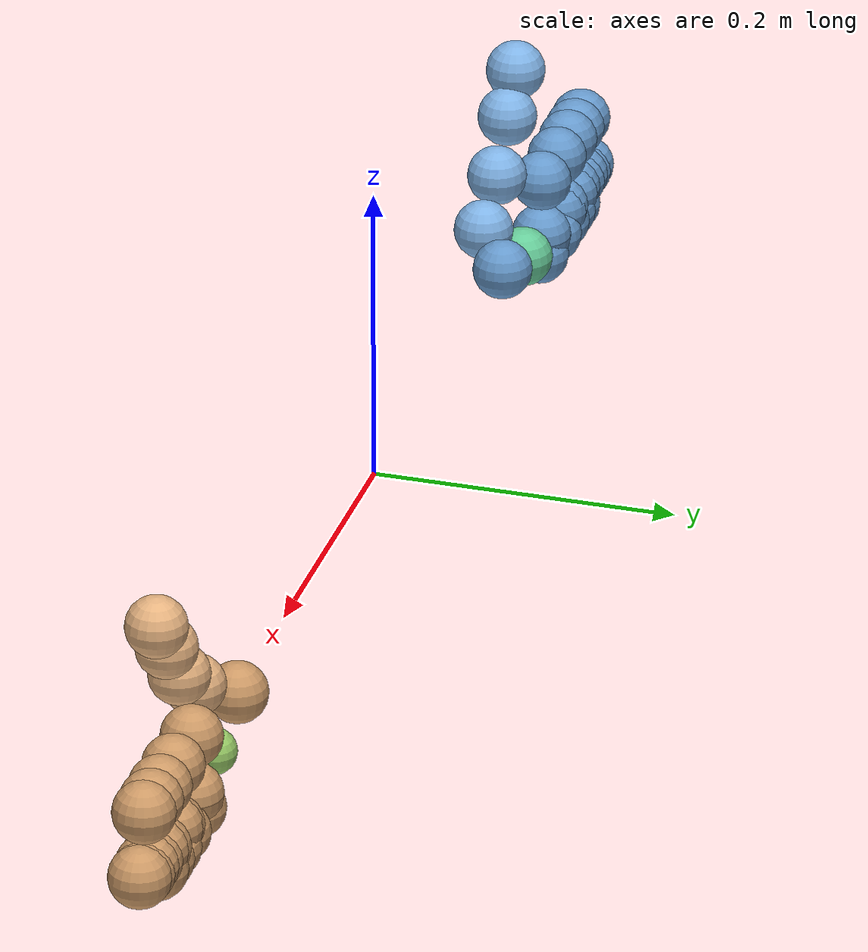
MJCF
<mujoco model="openxr_both_hands">
  <compiler angle="radian" meshdir="assets/"/>

  <option timestep="0.001" iterations="50" solver="Newton" tolerance="1e-10"/>

  <visual>
    <rgba haze="0.15 0.25 0.35 1"/>
    <global offwidth="800" offheight="800"/>
  </visual>

  <asset>
    <material name="left_hand_finger" rgba="0.4 0.6 0.8 1"/>
    <material name="left_hand_wrist" rgba="0.4 0.8 0.6 1"/>
    <material name="left_hand_thumb" rgba="0.5 0.7 0.9 1"/>
    <material name="right_hand_finger" rgba="0.8 0.6 0.4 1"/>
    <material name="right_hand_wrist" rgba="0.6 0.8 0.4 1"/>
    <material name="right_hand_thumb" rgba="0.9 0.7 0.5 1"/>
  </asset>

  <worldbody>
    <!-- LEFT HAND - All bodies flattened -->
    <body name="Left_XRHand_Palm" pos="-0.3 0 0">
      <geom name="Left_XRHand_Palm_geom" type="sphere" size="0.02" material="left_hand_finger"/>
    </body>

    <body name="Left_XRHand_Wrist" pos="-0.35 0 -0.015">
      <geom name="Left_XRHand_Wrist_geom" type="sphere" size="0.02" material="left_hand_wrist"/>
    </body>

    <!-- Left Thumb Chain - Flattened -->
    <body name="Left_XRHand_ThumbMetacarpal" pos="-0.324 -0.02 0.015">
      <geom name="Left_XRHand_ThumbMetacarpal_geom" type="sphere" size="0.02" material="left_hand_thumb"/>
    </body>

    <body name="Left_XRHand_ThumbProximal" pos="-0.356 -0.02 0.04">
      <geom name="Left_XRHand_ThumbProximal_geom" type="sphere" size="0.02" material="left_hand_thumb"/>
    </body>

    <body name="Left_XRHand_ThumbDistal" pos="-0.381 -0.02 0.072">
      <geom name="Left_XRHand_ThumbDistal_geom" type="sphere" size="0.02" material="left_hand_thumb"/>
    </body>

    <body name="Left_XRHand_ThumbTip" pos="-0.401 -0.02 0.097">
      <geom name="Left_XRHand_ThumbTip_geom" type="sphere" size="0.02" material="left_hand_thumb"/>
    </body>

    <!-- Left Index Finger Chain - Flattened -->
    <body name="Left_XRHand_IndexMetacarpal" pos="-0.395 0 0.02">
      <geom name="Left_XRHand_IndexMetacarpal_geom" type="sphere" size="0.02" material="left_hand_finger"/>
    </body>

    <body name="Left_XRHand_IndexProximal" pos="-0.433 0 0.02">
      <geom name="Left_XRHand_IndexProximal_geom" type="sphere" size="0.02" material="left_hand_finger"/>
    </body>

    <body name="Left_XRHand_IndexIntermediate" pos="-0.46 0 0.02">
      <geom name="Left_XRHand_IndexIntermediate_geom" type="sphere" size="0.02" material="left_hand_finger"/>
    </body>

    <body name="Left_XRHand_IndexDistal" pos="-0.478 0 0.02">
      <geom name="Left_XRHand_IndexDistal_geom" type="sphere" size="0.02" material="left_hand_finger"/>
    </body>

    <body name="Left_XRHand_IndexTip" pos="-0.493 0 0.02">
      <geom name="Left_XRHand_IndexTip_geom" type="sphere" size="0.02" material="left_hand_finger"/>
    </body>

    <!-- Left Middle Finger Chain - Flattened -->
    <body name="Left_XRHand_MiddleMetacarpal" pos="-0.395 0 -0.02">
      <geom name="Left_XRHand_MiddleMetacarpal_geom" type="sphere" size="0.02" material="left_hand_finger"/>
    </body>

    <body name="Left_XRHand_MiddleProximal" pos="-0.438 0 -0.02">
      <geom name="Left_XRHand_MiddleProximal_geom" type="sphere" size="0.02" material="left_hand_finger"/>
    </body>

    <body name="Left_XRHand_MiddleIntermediate" pos="-0.468 0 -0.02">
      <geom name="Left_XRHand_MiddleIntermediate_geom" type="sphere" size="0.02" material="left_hand_finger"/>
    </body>

    <body name="Left_XRHand_MiddleDistal" pos="-0.488 0 -0.02">
      <geom name="Left_XRHand_MiddleDistal_geom" type="sphere" size="0.02" material="left_hand_finger"/>
    </body>

    <body name="Left_XRHand_MiddleTip" pos="-0.503 0 -0.02">
      <geom name="Left_XRHand_MiddleTip_geom" type="sphere" size="0.02" material="left_hand_finger"/>
    </body>

    <!-- Left Ring Finger Chain - Flattened -->
    <body name="Left_XRHand_RingMetacarpal" pos="-0.395 0 -0.021">
      <geom name="Left_XRHand_RingMetacarpal_geom" type="sphere" size="0.02" material="left_hand_finger"/>
    </body>

    <body name="Left_XRHand_RingProximal" pos="-0.435 0 -0.021">
      <geom name="Left_XRHand_RingProximal_geom" type="sphere" size="0.02" material="left_hand_finger"/>
    </body>

    <body name="Left_XRHand_RingIntermediate" pos="-0.463 0 -0.021">
      <geom name="Left_XRHand_RingIntermediate_geom" type="sphere" size="0.02" material="left_hand_finger"/>
    </body>

    <body name="Left_XRHand_RingDistal" pos="-0.481 0 -0.021">
      <geom name="Left_XRHand_RingDistal_geom" type="sphere" size="0.02" material="left_hand_finger"/>
    </body>

    <body name="Left_XRHand_RingTip" pos="-0.496 0 -0.021">
      <geom name="Left_XRHand_RingTip_geom" type="sphere" size="0.02" material="left_hand_finger"/>
    </body>

    <!-- Left Little Finger Chain - Flattened -->
    <body name="Left_XRHand_LittleMetacarpal" pos="-0.390 0 -0.033">
      <geom name="Left_XRHand_LittleMetacarpal_geom" type="sphere" size="0.02" material="left_hand_finger"/>
    </body>

    <body name="Left_XRHand_LittleProximal" pos="-0.422 0 -0.033">
      <geom name="Left_XRHand_LittleProximal_geom" type="sphere" size="0.02" material="left_hand_finger"/>
    </body>

    <body name="Left_XRHand_LittleIntermediate" pos="-0.442 0 -0.033">
      <geom name="Left_XRHand_LittleIntermediate_geom" type="sphere" size="0.02" material="left_hand_finger"/>
    </body>

    <body name="Left_XRHand_LittleDistal" pos="-0.457 0 -0.033">
      <geom name="Left_XRHand_LittleDistal_geom" type="sphere" size="0.02" material="left_hand_finger"/>
    </body>

    <body name="Left_XRHand_LittleTip" pos="-0.469 0 -0.033">
      <geom name="Left_XRHand_LittleTip_geom" type="sphere" size="0.02" material="left_hand_finger"/>
    </body>

    <!-- RIGHT HAND - All bodies flattened -->
    <body name="Right_XRHand_Palm" pos="0.3 0 0">
      <geom name="Right_XRHand_Palm_geom" type="sphere" size="0.020" material="right_hand_finger"/>
    </body>

    <body name="Right_XRHand_Wrist" pos="0.35 0 -0.015">
      <geom name="Right_XRHand_Wrist_geom" type="sphere" size="0.015" material="right_hand_wrist"/>
    </body>

    <!-- Right Thumb Chain - Flattened -->
    <body name="Right_XRHand_ThumbMetacarpal" pos="0.324 -0.02 0.015">
      <geom name="Right_XRHand_ThumbMetacarpal_geom" type="sphere" size="0.02" material="right_hand_thumb"/>
    </body>

    <body name="Right_XRHand_ThumbProximal" pos="0.356 -0.02 0.04">
      <geom name="Right_XRHand_ThumbProximal_geom" type="sphere" size="0.02" material="right_hand_thumb"/>
    </body>

    <body name="Right_XRHand_ThumbDistal" pos="0.381 -0.02 0.072">
      <geom name="Right_XRHand_ThumbDistal_geom" type="sphere" size="0.02" material="right_hand_thumb"/>
    </body>

    <body name="Right_XRHand_ThumbTip" pos="0.401 -0.02 0.097">
      <geom name="Right_XRHand_ThumbTip_geom" type="sphere" size="0.02" material="right_hand_thumb"/>
    </body>

    <!-- Right Index Finger Chain - Flattened -->
    <body name="Right_XRHand_IndexMetacarpal" pos="0.395 0 0.02">
      <geom name="Right_XRHand_IndexMetacarpal_geom" type="sphere" size="0.02" material="right_hand_finger"/>
    </body>

    <body name="Right_XRHand_IndexProximal" pos="0.433 0 0.02">
      <geom name="Right_XRHand_IndexProximal_geom" type="sphere" size="0.02" material="right_hand_finger"/>
    </body>

    <body name="Right_XRHand_IndexIntermediate" pos="0.46 0 0.02">
      <geom name="Right_XRHand_IndexIntermediate_geom" type="sphere" size="0.02" material="right_hand_finger"/>
    </body>

    <body name="Right_XRHand_IndexDistal" pos="0.478 0 0.02">
      <geom name="Right_XRHand_IndexDistal_geom" type="sphere" size="0.02" material="right_hand_finger"/>
    </body>

    <body name="Right_XRHand_IndexTip" pos="0.493 0 0.02">
      <geom name="Right_XRHand_IndexTip_geom" type="sphere" size="0.02" material="right_hand_finger"/>
    </body>

    <!-- Right Middle Finger Chain - Flattened -->
    <body name="Right_XRHand_MiddleMetacarpal" pos="0.395 0 -0.02">
      <geom name="Right_XRHand_MiddleMetacarpal_geom" type="sphere" size="0.02" material="right_hand_finger"/>
    </body>

    <body name="Right_XRHand_MiddleProximal" pos="0.438 0 -0.02">
      <geom name="Right_XRHand_MiddleProximal_geom" type="sphere" size="0.02" material="right_hand_finger"/>
    </body>

    <body name="Right_XRHand_MiddleIntermediate" pos="0.468 0 -0.02">
      <geom name="Right_XRHand_MiddleIntermediate_geom" type="sphere" size="0.02" material="right_hand_finger"/>
    </body>

    <body name="Right_XRHand_MiddleDistal" pos="0.488 0 -0.02">
      <geom name="Right_XRHand_MiddleDistal_geom" type="sphere" size="0.02" material="right_hand_finger"/>
    </body>

    <body name="Right_XRHand_MiddleTip" pos="0.503 0 -0.02">
      <geom name="Right_XRHand_MiddleTip_geom" type="sphere" size="0.02" material="right_hand_finger"/>
    </body>

    <!-- Right Ring Finger Chain - Flattened -->
    <body name="Right_XRHand_RingMetacarpal" pos="0.395 0 -0.021">
      <geom name="Right_XRHand_RingMetacarpal_geom" type="sphere" size="0.02" material="right_hand_finger"/>
    </body>

    <body name="Right_XRHand_RingProximal" pos="0.435 0 -0.021">
      <geom name="Right_XRHand_RingProximal_geom" type="sphere" size="0.02" material="right_hand_finger"/>
    </body>

    <body name="Right_XRHand_RingIntermediate" pos="0.463 0 -0.021">
      <geom name="Right_XRHand_RingIntermediate_geom" type="sphere" size="0.02" material="right_hand_finger"/>
    </body>

    <body name="Right_XRHand_RingDistal" pos="0.481 0 -0.021">
      <geom name="Right_XRHand_RingDistal_geom" type="sphere" size="0.02" material="right_hand_finger"/>
    </body>

    <body name="Right_XRHand_RingTip" pos="0.496 0 -0.021">
      <geom name="Right_XRHand_RingTip_geom" type="sphere" size="0.02" material="right_hand_finger"/>
    </body>

    <!-- Right Little Finger Chain - Flattened -->
    <body name="Right_XRHand_LittleMetacarpal" pos="0.390 0 -0.033">
      <geom name="Right_XRHand_LittleMetacarpal_geom" type="sphere" size="0.02" material="right_hand_finger"/>
    </body>

    <body name="Right_XRHand_LittleProximal" pos="0.422 0 -0.033">
      <geom name="Right_XRHand_LittleProximal_geom" type="sphere" size="0.02" material="right_hand_finger"/>
    </body>

    <body name="Right_XRHand_LittleIntermediate" pos="0.442 0 -0.033">
      <geom name="Right_XRHand_LittleIntermediate_geom" type="sphere" size="0.02" material="right_hand_finger"/>
    </body>

    <body name="Right_XRHand_LittleDistal" pos="0.457 0 -0.033">
      <geom name="Right_XRHand_LittleDistal_geom" type="sphere" size="0.02" material="right_hand_finger"/>
    </body>

    <body name="Right_XRHand_LittleTip" pos="0.469 0 -0.033">
      <geom name="Right_XRHand_LittleTip_geom" type="sphere" size="0.02" material="right_hand_finger"/>
    </body>
  </worldbody>

</mujoco>
